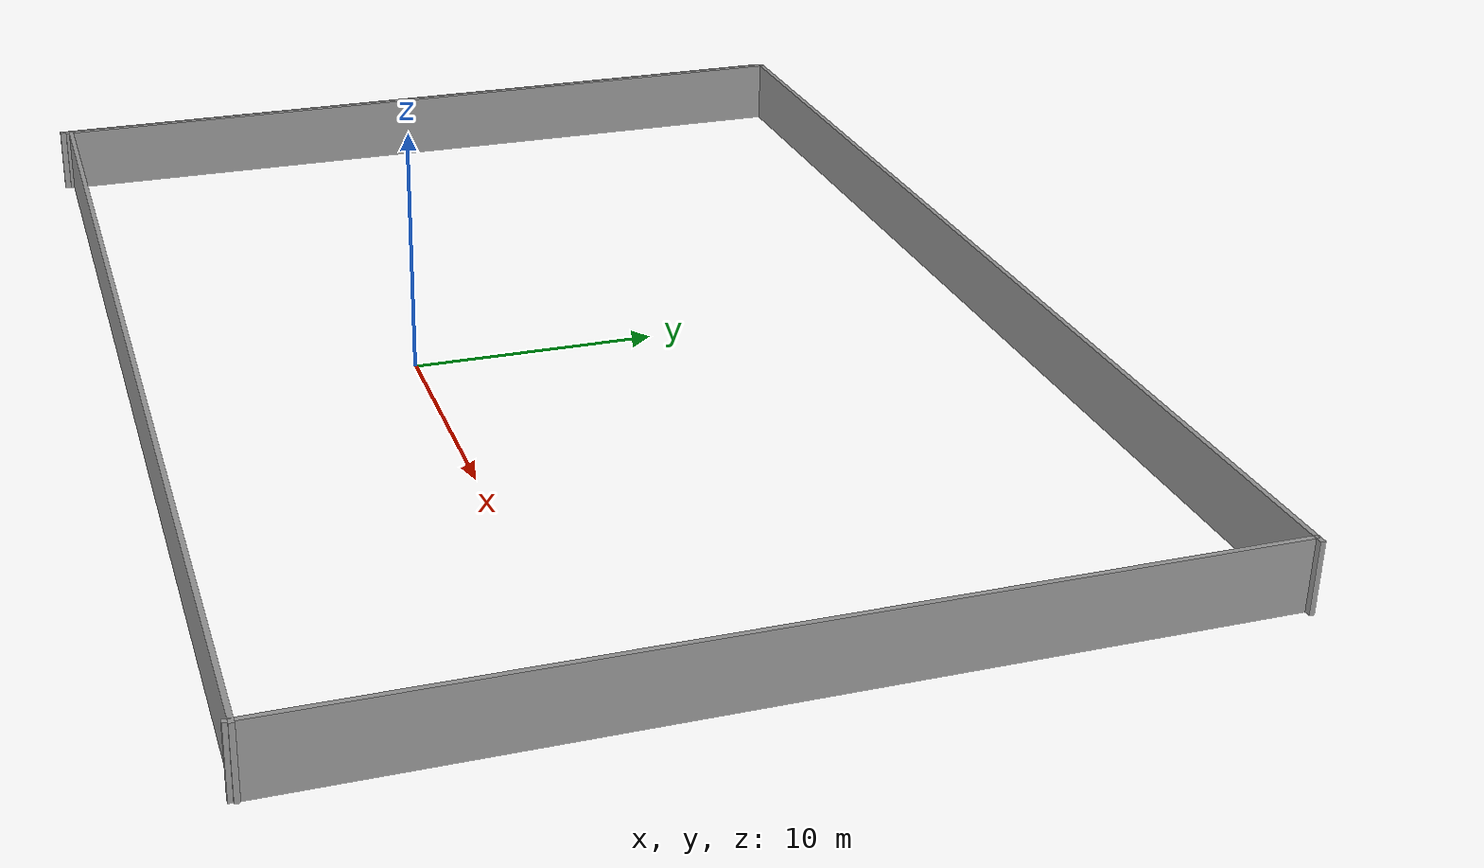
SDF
<?xml version='1.0'?>
<sdf version='1.6'>
  <model name='grey_wall_charging'>
    <link name='link'>
      <pose frame=''>1.09905 24.21751 1.4 0 -0 0</pose>
      <self_collide>0</self_collide>
      <enable_wind>0</enable_wind>
      <kinematic>0</kinematic>
      <inertial>
        <inertia>
          <ixx>0</ixx>
          <ixy>0</ixy>
          <ixz>0</ixz>
          <iyy>0</iyy>
          <iyz>0</iyz>
          <izz>0</izz>
        </inertia>
        <mass>0</mass>
        <pose frame=''>0 0 0 0 -0 0</pose>
      </inertial>
      <visual name='visual'>
        <cast_shadows>0</cast_shadows>
        <geometry>
          <box>
            <size>51.4596 0.2 2.8</size>
          </box>
        </geometry>
        <material>
          <script>
            <uri>model://grey_wall/materials/scripts</uri>
            <uri>model://grey_wall/materials/textures</uri>
            <name>vrc/grey_wall</name>
          </script>
          <shader type='pixel'/>
        </material>
        <pose frame=''>0 0 0 0 -0 0</pose>
        <transparency>0</transparency>
      </visual>
      <collision name='collision'>
        <laser_retro>0</laser_retro>
        <max_contacts>10</max_contacts>
        <pose frame=''>0 0 0 0 -0 0</pose>
        <geometry>
          <box>
            <size>51.4596 0.2 2.8</size>
          </box>
        </geometry>
        <surface>
          <friction>
            <ode>
              <mu>1</mu>
              <mu2>1</mu2>
              <fdir1>0 0 0</fdir1>
              <slip1>0</slip1>
              <slip2>0</slip2>
            </ode>
            <torsional>
              <coefficient>1</coefficient>
              <patch_radius>0</patch_radius>
              <surface_radius>0</surface_radius>
              <use_patch_radius>1</use_patch_radius>
              <ode>
                <slip>0</slip>
              </ode>
            </torsional>
          </friction>
          <bounce>
            <restitution_coefficient>0</restitution_coefficient>
            <threshold>1e+06</threshold>
          </bounce>
          <contact>
            <collide_without_contact>0</collide_without_contact>
            <collide_without_contact_bitmask>1</collide_without_contact_bitmask>
            <collide_bitmask>1</collide_bitmask>
            <ode>
              <soft_cfm>0</soft_cfm>
              <soft_erp>0.2</soft_erp>
              <kp>1e+13</kp>
              <kd>1</kd>
              <max_vel>0.01</max_vel>
              <min_depth>0</min_depth>
            </ode>
            <bullet>
              <split_impulse>1</split_impulse>
              <split_impulse_penetration_threshold>-0.01</split_impulse_penetration_threshold>
              <soft_cfm>0</soft_cfm>
              <soft_erp>0.2</soft_erp>
              <kp>1e+13</kp>
              <kd>1</kd>
            </bullet>
          </contact>
        </surface>
      </collision>
    </link>
    <link name='link_clone'>
      <pose frame=''>1.31651 -11.4074 1.4 0 -0 0</pose>
      <self_collide>0</self_collide>
      <enable_wind>0</enable_wind>
      <kinematic>0</kinematic>
      <inertial>
        <inertia>
          <ixx>0</ixx>
          <ixy>0</ixy>
          <ixz>0</ixz>
          <iyy>0</iyy>
          <iyz>0</iyz>
          <izz>0</izz>
        </inertia>
        <mass>0</mass>
        <pose frame=''>0 0 0 0 -0 0</pose>
      </inertial>
      <visual name='visual'>
        <cast_shadows>0</cast_shadows>
        <geometry>
          <box>
            <size>51.4596 0.2 2.8</size>
          </box>
        </geometry>
        <material>
          <script>
            <uri>model://grey_wall/materials/scripts</uri>
            <uri>model://grey_wall/materials/textures</uri>
            <name>vrc/grey_wall</name>
          </script>
          <shader type='pixel'/>
        </material>
        <pose frame=''>0 0 0 0 -0 0</pose>
        <transparency>0</transparency>
      </visual>
      <collision name='collision'>
        <laser_retro>0</laser_retro>
        <max_contacts>10</max_contacts>
        <pose frame=''>0 0 0 0 -0 0</pose>
        <geometry>
          <box>
            <size>51.4596 0.2 2.8</size>
          </box>
        </geometry>
        <surface>
          <friction>
            <ode>
              <mu>1</mu>
              <mu2>1</mu2>
              <fdir1>0 0 0</fdir1>
              <slip1>0</slip1>
              <slip2>0</slip2>
            </ode>
            <torsional>
              <coefficient>1</coefficient>
              <patch_radius>0</patch_radius>
              <surface_radius>0</surface_radius>
              <use_patch_radius>1</use_patch_radius>
              <ode>
                <slip>0</slip>
              </ode>
            </torsional>
          </friction>
          <bounce>
            <restitution_coefficient>0</restitution_coefficient>
            <threshold>1e+06</threshold>
          </bounce>
          <contact>
            <collide_without_contact>0</collide_without_contact>
            <collide_without_contact_bitmask>1</collide_without_contact_bitmask>
            <collide_bitmask>1</collide_bitmask>
            <ode>
              <soft_cfm>0</soft_cfm>
              <soft_erp>0.2</soft_erp>
              <kp>1e+13</kp>
              <kd>1</kd>
              <max_vel>0.01</max_vel>
              <min_depth>0</min_depth>
            </ode>
            <bullet>
              <split_impulse>1</split_impulse>
              <split_impulse_penetration_threshold>-0.01</split_impulse_penetration_threshold>
              <soft_cfm>0</soft_cfm>
              <soft_erp>0.2</soft_erp>
              <kp>1e+13</kp>
              <kd>1</kd>
            </bullet>
          </contact>
        </surface>
      </collision>
    </link>
    <link name='link_clone_0'>
      <pose frame=''>26.6775 6.2962 1.4 0 -0 1.58168</pose>
      <self_collide>0</self_collide>
      <enable_wind>0</enable_wind>
      <kinematic>0</kinematic>
      <inertial>
        <inertia>
          <ixx>0</ixx>
          <ixy>0</ixy>
          <ixz>0</ixz>
          <iyy>0</iyy>
          <iyz>0</iyz>
          <izz>0</izz>
        </inertia>
        <mass>0</mass>
        <pose frame=''>0 0 0 0 -0 0</pose>
      </inertial>
      <visual name='visual'>
        <cast_shadows>0</cast_shadows>
        <geometry>
          <box>
            <size>35.9614 0.2 2.8</size>
          </box>
        </geometry>
        <material>
          <script>
            <uri>model://grey_wall/materials/scripts</uri>
            <uri>model://grey_wall/materials/textures</uri>
            <name>vrc/grey_wall</name>
          </script>
          <shader type='pixel'/>
        </material>
        <pose frame=''>0 0 0 0 -0 0</pose>
        <transparency>0</transparency>
      </visual>
      <collision name='collision'>
        <laser_retro>0</laser_retro>
        <max_contacts>10</max_contacts>
        <pose frame=''>0 0 0 0 -0 0</pose>
        <geometry>
          <box>
            <size>35.9614 0.2 2.8</size>
          </box>
        </geometry>
        <surface>
          <friction>
            <ode>
              <mu>1</mu>
              <mu2>1</mu2>
              <fdir1>0 0 0</fdir1>
              <slip1>0</slip1>
              <slip2>0</slip2>
            </ode>
            <torsional>
              <coefficient>1</coefficient>
              <patch_radius>0</patch_radius>
              <surface_radius>0</surface_radius>
              <use_patch_radius>1</use_patch_radius>
              <ode>
                <slip>0</slip>
              </ode>
            </torsional>
          </friction>
          <bounce>
            <restitution_coefficient>0</restitution_coefficient>
            <threshold>1e+06</threshold>
          </bounce>
          <contact>
            <collide_without_contact>0</collide_without_contact>
            <collide_without_contact_bitmask>1</collide_without_contact_bitmask>
            <collide_bitmask>1</collide_bitmask>
            <ode>
              <soft_cfm>0</soft_cfm>
              <soft_erp>0.2</soft_erp>
              <kp>1e+13</kp>
              <kd>1</kd>
              <max_vel>0.01</max_vel>
              <min_depth>0</min_depth>
            </ode>
            <bullet>
              <split_impulse>1</split_impulse>
              <split_impulse_penetration_threshold>-0.01</split_impulse_penetration_threshold>
              <soft_cfm>0</soft_cfm>
              <soft_erp>0.2</soft_erp>
              <kp>1e+13</kp>
              <kd>1</kd>
            </bullet>
          </contact>
        </surface>
      </collision>
    </link>
    <link name='link_clone_0_clone'>
      <pose frame=''>-24.6009 6.0678 1.4 0 -0 1.58168</pose>
      <self_collide>0</self_collide>
      <enable_wind>0</enable_wind>
      <kinematic>0</kinematic>
      <inertial>
        <inertia>
          <ixx>0</ixx>
          <ixy>0</ixy>
          <ixz>0</ixz>
          <iyy>0</iyy>
          <iyz>0</iyz>
          <izz>0</izz>
        </inertia>
        <mass>0</mass>
        <pose frame=''>0 0 0 0 -0 0</pose>
      </inertial>
      <visual name='visual'>
        <cast_shadows>0</cast_shadows>
        <geometry>
          <box>
            <size>35.9614 0.2 2.8</size>
          </box>
        </geometry>
        <material>
          <script>
            <uri>model://grey_wall/materials/scripts</uri>
            <uri>model://grey_wall/materials/textures</uri>
            <name>vrc/grey_wall</name>
          </script>
          <shader type='pixel'/>
        </material>
        <pose frame=''>0 0 0 0 -0 0</pose>
        <transparency>0</transparency>
      </visual>
      <collision name='collision'>
        <laser_retro>0</laser_retro>
        <max_contacts>10</max_contacts>
        <pose frame=''>0 0 0 0 -0 0</pose>
        <geometry>
          <box>
            <size>35.9614 0.2 2.8</size>
          </box>
        </geometry>
        <surface>
          <friction>
            <ode>
              <mu>1</mu>
              <mu2>1</mu2>
              <fdir1>0 0 0</fdir1>
              <slip1>0</slip1>
              <slip2>0</slip2>
            </ode>
            <torsional>
              <coefficient>1</coefficient>
              <patch_radius>0</patch_radius>
              <surface_radius>0</surface_radius>
              <use_patch_radius>1</use_patch_radius>
              <ode>
                <slip>0</slip>
              </ode>
            </torsional>
          </friction>
          <bounce>
            <restitution_coefficient>0</restitution_coefficient>
            <threshold>1e+06</threshold>
          </bounce>
          <contact>
            <collide_without_contact>0</collide_without_contact>
            <collide_without_contact_bitmask>1</collide_without_contact_bitmask>
            <collide_bitmask>1</collide_bitmask>
            <ode>
              <soft_cfm>0</soft_cfm>
              <soft_erp>0.2</soft_erp>
              <kp>1e+13</kp>
              <kd>1</kd>
              <max_vel>0.01</max_vel>
              <min_depth>0</min_depth>
            </ode>
            <bullet>
              <split_impulse>1</split_impulse>
              <split_impulse_penetration_threshold>-0.01</split_impulse_penetration_threshold>
              <soft_cfm>0</soft_cfm>
              <soft_erp>0.2</soft_erp>
              <kp>1e+13</kp>
              <kd>1</kd>
            </bullet>
          </contact>
        </surface>
      </collision>
    </link>
    <link name='link_clone_0_clone_0'>
      <pose frame=''>-24.4962 6.3268 1.4 0 -0 1.58168</pose>
      <self_collide>0</self_collide>
      <enable_wind>0</enable_wind>
      <kinematic>0</kinematic>
      <inertial>
        <inertia>
          <ixx>0</ixx>
          <ixy>0</ixy>
          <ixz>0</ixz>
          <iyy>0</iyy>
          <iyz>0</iyz>
          <izz>0</izz>
        </inertia>
        <mass>0</mass>
        <pose frame=''>0 0 0 0 -0 0</pose>
      </inertial>
      <visual name='visual'>
        <cast_shadows>0</cast_shadows>
        <geometry>
          <box>
            <size>35.9614 0.2 2.8</size>
          </box>
        </geometry>
        <material>
          <script>
            <uri>model://grey_wall/materials/scripts</uri>
            <uri>model://grey_wall/materials/textures</uri>
            <name>vrc/grey_wall</name>
          </script>
          <shader type='pixel'/>
        </material>
        <pose frame=''>0 0 0 0 -0 0</pose>
        <transparency>0</transparency>
      </visual>
      <collision name='collision'>
        <laser_retro>0</laser_retro>
        <max_contacts>10</max_contacts>
        <pose frame=''>0 0 0 0 -0 0</pose>
        <geometry>
          <box>
            <size>35.9614 0.2 2.8</size>
          </box>
        </geometry>
        <surface>
          <friction>
            <ode>
              <mu>1</mu>
              <mu2>1</mu2>
              <fdir1>0 0 0</fdir1>
              <slip1>0</slip1>
              <slip2>0</slip2>
            </ode>
            <torsional>
              <coefficient>1</coefficient>
              <patch_radius>0</patch_radius>
              <surface_radius>0</surface_radius>
              <use_patch_radius>1</use_patch_radius>
              <ode>
                <slip>0</slip>
              </ode>
            </torsional>
          </friction>
          <bounce>
            <restitution_coefficient>0</restitution_coefficient>
            <threshold>1e+06</threshold>
          </bounce>
          <contact>
            <collide_without_contact>0</collide_without_contact>
            <collide_without_contact_bitmask>1</collide_without_contact_bitmask>
            <collide_bitmask>1</collide_bitmask>
            <ode>
              <soft_cfm>0</soft_cfm>
              <soft_erp>0.2</soft_erp>
              <kp>1e+13</kp>
              <kd>1</kd>
              <max_vel>0.01</max_vel>
              <min_depth>0</min_depth>
            </ode>
            <bullet>
              <split_impulse>1</split_impulse>
              <split_impulse_penetration_threshold>-0.01</split_impulse_penetration_threshold>
              <soft_cfm>0</soft_cfm>
              <soft_erp>0.2</soft_erp>
              <kp>1e+13</kp>
              <kd>1</kd>
            </bullet>
          </contact>
        </surface>
      </collision>
    </link>
    <static>1</static>
    <allow_auto_disable>0</allow_auto_disable>
  </model>
</sdf>
